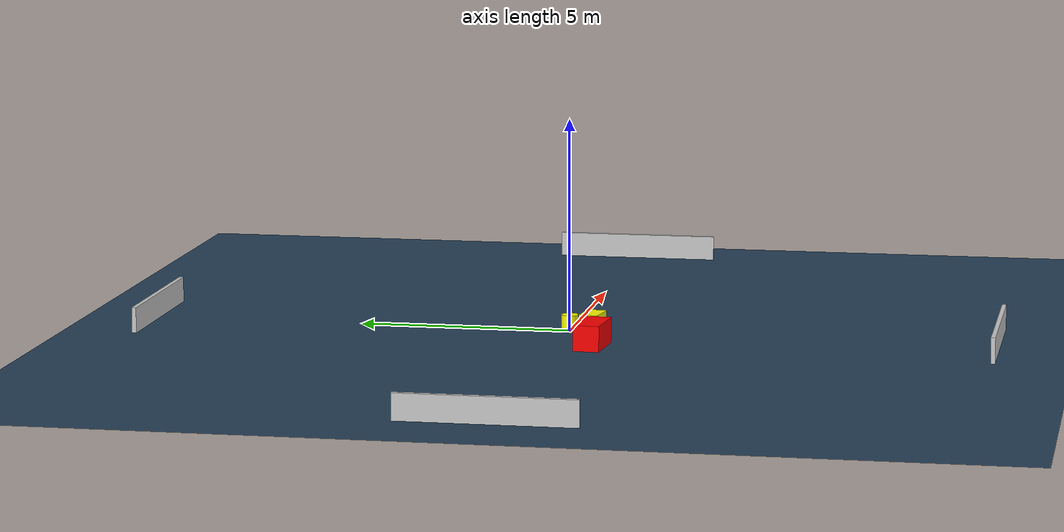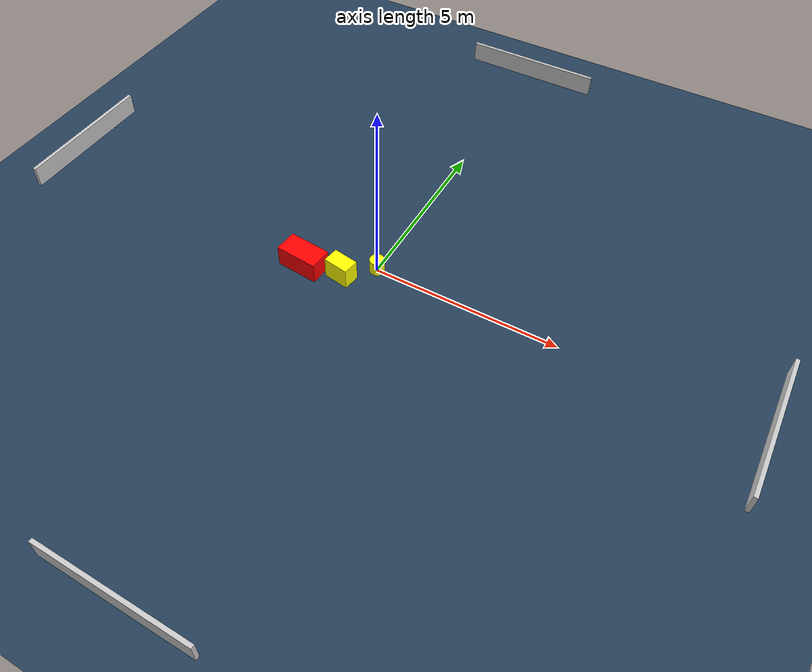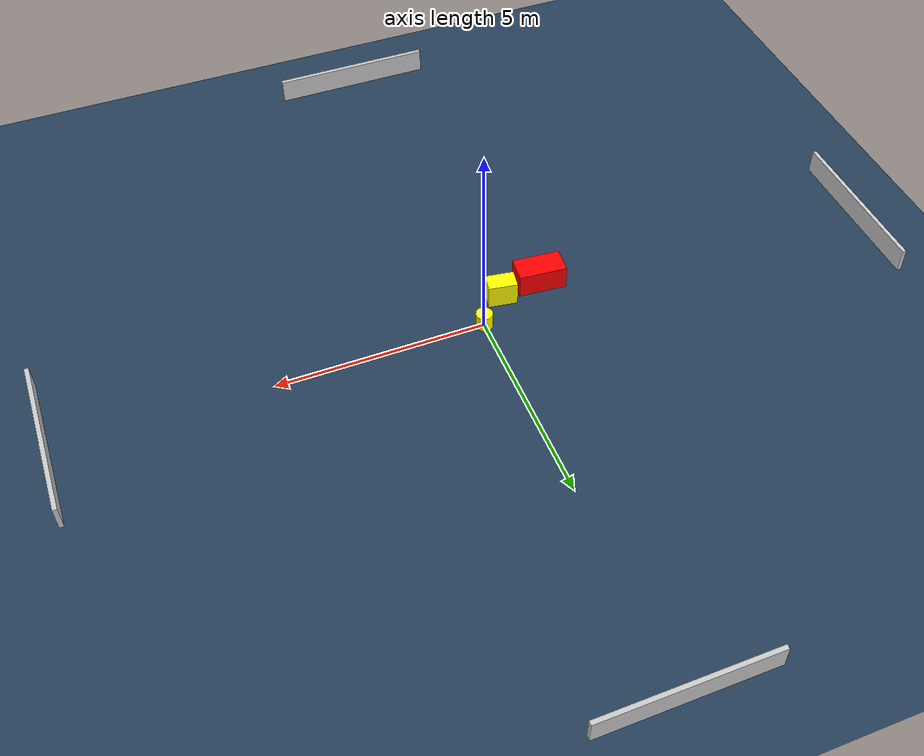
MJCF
<?xml version="1.0" ?>
<mujoco model="generated_environment">
  <option timestep="0.01" integrator="RK4" cone="elliptic"/>
  <default>
    <geom density="1"/>
  </default>
  <asset>
    <texture builtin="gradient" height="3072" name="skybox" rgb1="0.3 0.5 0.7" rgb2="0 0 0" type="skybox" width="512"/>
    <texture builtin="checker" height="300" name="groundplane" rgb1="0.2 0.3 0.4" rgb2="0.1 0.2 0.3" type="2d" width="300"/>
    <material name="groundplane" reflectance="0.2" texrepeat="5 5" texture="groundplane"/>
  </asset>
  <worldbody>
    <light dir="0 0 -1" directional="true" pos="0 0 1.5"/>
    <geom condim="3" friction="0.5 0.005 0.001" material="groundplane" name="floor" pos="0 0 0" size="0 0 0.05" type="plane"/>
    <body name="walls">
      <geom name="wall_1" condim="4" pos="-10.0 0.0 0.3" rgba="0.800000011920929 0.800000011920929 0.800000011920929 1.0" size="0.05 2.0 0.3" type="box"/>
      <geom name="wall_2" condim="4" pos="10.0 0.0 0.3" rgba="0.800000011920929 0.800000011920929 0.800000011920929 1.0" size="0.05 2.0 0.3" type="box"/>
      <geom name="wall_3" condim="4" pos="0.0 -10.0 0.3" rgba="0.800000011920929 0.800000011920929 0.800000011920929 1.0" size="2.0 0.05 0.3" type="box"/>
      <geom name="wall_4" condim="4" pos="0.0 10.0 0.3" rgba="0.800000011920929 0.800000011920929 0.800000011920929 1.0" size="2.0 0.05 0.3" type="box"/>
    </body>
    <body name="robot">
      <joint name="joint_x" type="slide" pos="0 0 0" axis="1 0 0"/>
      <joint name="joint_y" type="slide" pos="0 0 0" axis="0 1 0"/>
      <geom name="robot" type="cylinder" pos="0.0 0.0 0.2" size="0.2 0.2 0.0" mass="5.0" friction="1.0 0.005 0.0001" condim="4" rgba="1.0 1.0 0.0 1.0"/>
    </body>
    <body name="obstacle_1_movable">
      <geom name="obstacle_1_movable" condim="4" pos="-0.6874999550530827 -0.6624610741897206 0.3" euler="0 0 171.06687836276095" friction="0.0 0.005 0.001" rgba="1.0 1.0 0.0 1.0" size="0.34631452299108617 0.21976715272585579 0.3" type="box" mass="0.1"/>
      <joint type="free"/>
    </body>
    <body name="obstacle_2_static">
      <geom name="obstacle_2_static" condim="4" pos="-1.7297046596726386 -0.8193850139770279 0.3" euler="0 0 265.2103358593099" friction="0.0 0.005 0.001" rgba="1.0 0.0 0.0 1.0" size="0.30934011284989466 0.5784824569118985 0.3" type="box"/>
    </body>
  </worldbody>
  <actuator>
    <motor name="actuator_x" joint="joint_x" gear="1" ctrlrange="-1 1"/>
    <motor name="actuator_y" joint="joint_y" gear="1" ctrlrange="-1 1"/>
  </actuator>
</mujoco>
